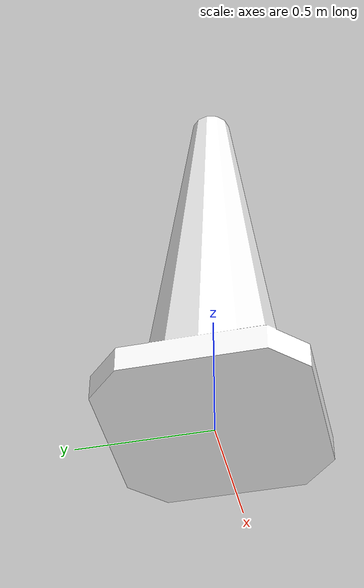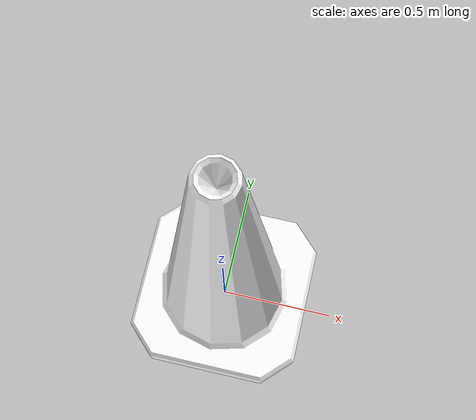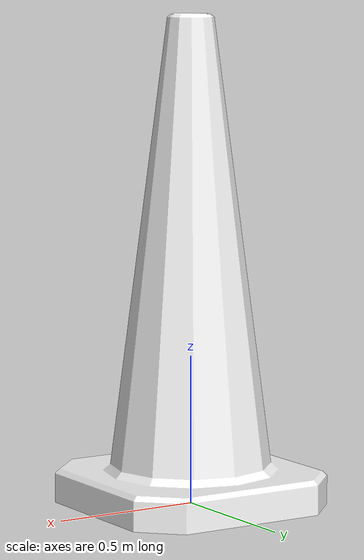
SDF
<?xml version="1.0" ?>
<sdf version="1.5">
  <model name="Construction Cone">
    <link name="link">
      <collision name="collision">
        <geometry>
          <mesh>
            <scale>15 15 15</scale>
            <uri>model://construction_cone/meshes/construction_cone.dae</uri>
          </mesh>
        </geometry>
      </collision>
      <visual name="visual">
        <geometry>
          <mesh>
            <scale>15 15 15</scale>
            <uri>model://construction_cone/meshes/construction_cone.dae</uri>
          </mesh>
        </geometry>
        <material>
          <diffuse>1.0 1.0 1.0 1.0</diffuse>
          <specular>0.1 0.1 0.1 1.0</specular>
          <pbr>
            <metal>
              <albedo_map>model://construction_cone/materials/textures/Construction_Cone_Diffuse.png</albedo_map>
              <metalness>0.1</metalness>
              <roughness>0.6</roughness>
            </metal>
          </pbr>
        </material>
      </visual>
    </link>
  </model>
</sdf>
